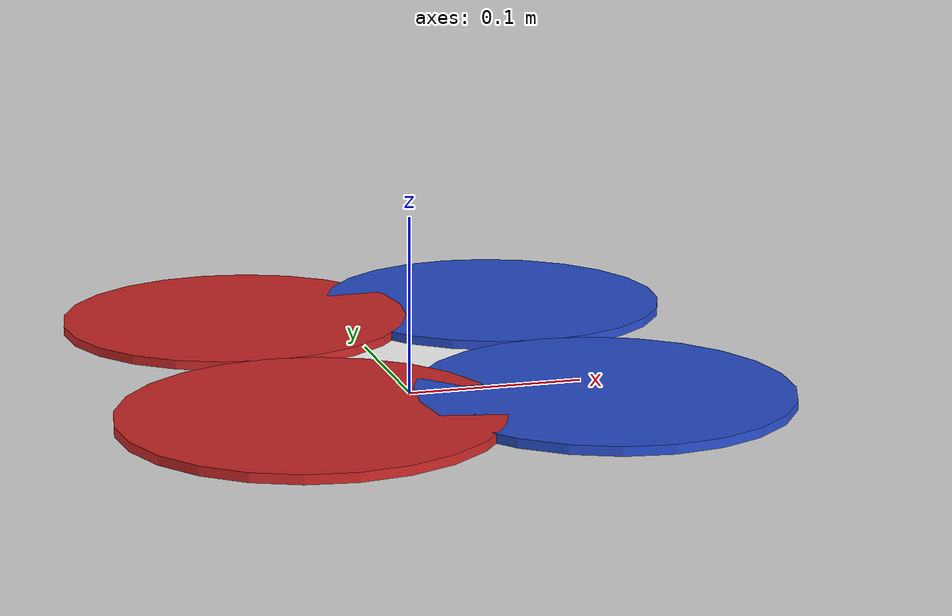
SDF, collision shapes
<?xml version="1.0" ?>
<sdf version="1.8">
  <model name="zmr250">
    <link name="base_link">
      <enable_wind>true</enable_wind>
        <pose>0 0 0 0 -0 0</pose>
        <inertial>
        <pose>0 0 0 0 -0 0</pose>
        <mass>0.848</mass>
        <inertia>
          <ixx>0.0032384</ixx>
          <ixy>0</ixy>
          <ixz>0</ixz>
          <iyy>0.0040254</iyy>
          <iyz>0</iyz>
          <izz>0.00459895</izz>
        </inertia>
        </inertial>
      <visual name="base_link_visual">
        <geometry>
          <mesh>
            <uri>model://zmr250/meshes/zmr250.dae</uri>
          </mesh>
        </geometry>
        <material>
          <diffuse>1.0 1.0 1.0 1.0</diffuse>
          <specular>0.0 0.0 0.0 1.0</specular>
          <pbr>
            <metal>
              <albedo_map>meshes/Hone.png</albedo_map>
            </metal>
          </pbr>
        </material>
      </visual>
      <collision name='base_link_inertia_collision'>
        <pose>0 0 0.01 0 -0 0</pose>
        <geometry>
            <box>
            <size>0.2 0.2 0.02</size>
            </box>
        </geometry>
        <!-- Add friction to the model -->
        <surface>
        <friction>
            <ode>
            <mu>1.0</mu>
            <mu2>1.0</mu2>
            <fdir1>1 1 0</fdir1>
            <slip1>0</slip1>
            <slip2>0</slip2>
            </ode>
        </friction>
        </surface>
      </collision>
    </link>

    <!-- IMU -->
    <model name='imu'>
        <link name="internal">
            <inertial>
                <mass>0.005</mass>
                <inertia>
                    <ixx>8.33e-06</ixx>
                    <ixy>0</ixy>
                    <ixz>0</ixz>
                    <iyy>8.33e-06</iyy>
                    <iyz>0</iyz>
                    <izz>8.33e-06</izz>
                </inertia>
            </inertial>
            <sensor name='imu' type='imu'>
                <always_on>1</always_on>
                <update_rate>250</update_rate>
                <imu>
                    <angular_velocity>
                        <x>
                            <noise type='gaussian'>
                                <mean>0</mean>
                                <stddev>0.009</stddev>
                                <bias_mean>0.00075</bias_mean>
                                <bias_stddev>0.005</bias_stddev>
                                <dynamic_bias_stddev>0.00002</dynamic_bias_stddev>
                                <dynamic_bias_correlation_time>400.0</dynamic_bias_correlation_time>
                                <precision>0.00025</precision>
                            </noise>
                        </x>
                        <y>
                            <noise type='gaussian'>
                                <mean>0</mean>
                                <stddev>0.009</stddev>
                                <bias_mean>0.00075</bias_mean>
                                <bias_stddev>0.005</bias_stddev>
                                <dynamic_bias_stddev>0.00002</dynamic_bias_stddev>
                                <dynamic_bias_correlation_time>400.0</dynamic_bias_correlation_time>
                                <precision>0.00025</precision>
                            </noise>
                        </y>
                        <z>
                            <noise type='gaussian'>
                                <mean>0</mean>
                                <stddev>0.009</stddev>
                                <bias_mean>0.00075</bias_mean>
                                <bias_stddev>0.005</bias_stddev>
                                <dynamic_bias_stddev>0.00002</dynamic_bias_stddev>
                                <dynamic_bias_correlation_time>400.0</dynamic_bias_correlation_time>
                                <precision>0.00025</precision>
                            </noise>
                        </z>
                    </angular_velocity>
                    <linear_acceleration>
                        <x>
                            <noise type='gaussian'>
                                <mean>0</mean>
                                <stddev>0.021</stddev>
                                <bias_mean>0.05</bias_mean>
                                <bias_stddev>0.0075</bias_stddev>
                                <dynamic_bias_stddev>0.000375</dynamic_bias_stddev>
                                <dynamic_bias_correlation_time>175.0</dynamic_bias_correlation_time>
                                <precision>0.005</precision>
                            </noise>
                        </x>
                        <y>
                            <noise type='gaussian'>
                                <mean>0</mean>
                                <stddev>0.021</stddev>
                                <bias_mean>0.05</bias_mean>
                                <bias_stddev>0.0075</bias_stddev>
                                <dynamic_bias_stddev>0.000375</dynamic_bias_stddev>
                                <dynamic_bias_correlation_time>175.0</dynamic_bias_correlation_time>
                                <precision>0.005</precision>
                            </noise>
                        </y>
                        <z>
                            <noise type='gaussian'>
                                <mean>0</mean>
                                <stddev>0.021</stddev>
                                <bias_mean>0.05</bias_mean>
                                <bias_stddev>0.0075</bias_stddev>
                                <dynamic_bias_stddev>0.000375</dynamic_bias_stddev>
                                <dynamic_bias_correlation_time>175.0</dynamic_bias_correlation_time>
                                <precision>0.005</precision>
                            </noise>
                        </z>
                    </linear_acceleration>
                </imu>
            </sensor>
        </link>
    </model>

    <joint name="imu_joint" type="fixed">
        <parent>base_link</parent>
        <child>imu</child>
    </joint>

    <link name='rotor_0'>
        <pose>0.07849349 -0.09867985 0.023 0 -0 0</pose>
        <inertial>
        <pose>0 0 0 0 -0 0</pose>
        <mass>0.005</mass>
        <inertia>
            <ixx>9.75e-07</ixx>
            <ixy>0</ixy>
            <ixz>0</ixz>
            <iyy>4.17041e-05</iyy>
            <iyz>0</iyz>
            <izz>4.26041e-05</izz>
        </inertia>
        </inertial>
        <collision name='rotor_0_collision'>
        <pose>0 0 0 0 -0 0</pose>
        <geometry>
            <cylinder>
            <length>0.005</length>
            <radius>0.1</radius>
            </cylinder>
        </geometry>
        <surface>
            <contact>
            <ode/>
            </contact>
            <friction>
            <ode/>
            </friction>
        </surface>
        </collision>
        <visual name='rotor_0_visual'>
        <pose>0 0 0 0 -0 0</pose>
        <geometry>
            <mesh>
            <scale>0.06 0.06 0.06</scale>
            <uri>model://zmr250/meshes/propeller_ccw.dae</uri>
            </mesh>
        </geometry>
        <material>
            <diffuse>0 0 1 1</diffuse>
            <script>
            <name>Gazebo/Blue</name>
            <uri>file://media/materials/scripts/gazebo.material</uri>
            </script>
        </material>
        <cast_shadows>0</cast_shadows>
        </visual>
        <gravity>1</gravity>
        <velocity_decay/>
    </link>
    <joint name='rotor_0_joint' type='revolute'>
        <child>rotor_0</child>
        <parent>base_link</parent>
        <axis>
        <xyz expressed_in='__model__'>0 0 1</xyz>
        <limit>
            <lower>-1e+16</lower>
            <upper>1e+16</upper>
        </limit>
        <dynamics>
            <spring_reference>0</spring_reference>
            <spring_stiffness>0</spring_stiffness>
        </dynamics>
        </axis>
    </joint>
    <link name='rotor_1'>
        <pose>-0.07849349 0.09867985 0.023 0 -0 0</pose>
        <inertial>
        <pose>0 0 0 0 -0 0</pose>
        <mass>0.005</mass>
        <inertia>
            <ixx>9.75e-07</ixx>
            <ixy>0</ixy>
            <ixz>0</ixz>
            <iyy>4.17041e-05</iyy>
            <iyz>0</iyz>
            <izz>4.26041e-05</izz>
        </inertia>
        </inertial>
        <collision name='rotor_1_collision'>
        <pose>0 0 0 0 -0 0</pose>
        <geometry>
            <cylinder>
            <length>0.005</length>
            <radius>0.1</radius>
            </cylinder>
        </geometry>
        <surface>
            <contact>
            <ode/>
            </contact>
            <friction>
            <ode/>
            </friction>
        </surface>
        </collision>
        <visual name='rotor_1_visual'>
        <pose>0 0 0 0 -0 0</pose>
        <geometry>
            <mesh>
             <scale>0.06 0.06 0.06</scale>
            <uri>model://zmr250/meshes/propeller_ccw.dae</uri>
            </mesh>
        </geometry>
        <material>
            <diffuse>1 0 0 1</diffuse>
            <script>
            <name>Gazebo/Red</name>
            <uri>file://media/materials/scripts/gazebo.material</uri>
            </script>
        </material>
        <cast_shadows>0</cast_shadows>
        </visual>
        <gravity>1</gravity>
        <velocity_decay/>
    </link>
    <joint name='rotor_1_joint' type='revolute'>
        <child>rotor_1</child>
        <parent>base_link</parent>
        <axis>
        <xyz expressed_in='__model__'>0 0 1</xyz>
        <limit>
            <lower>-1e+16</lower>
            <upper>1e+16</upper>
        </limit>
        <dynamics>
            <spring_reference>0</spring_reference>
            <spring_stiffness>0</spring_stiffness>
        </dynamics>
        </axis>
    </joint>
    <link name='rotor_2'>
        <pose>0.07849349 0.09867985 0.023 0 -0 0</pose>
        <inertial>
        <pose>0 0 0 0 -0 0</pose>
        <mass>0.005</mass>
        <inertia>
            <ixx>9.75e-07</ixx>
            <ixy>0</ixy>
            <ixz>0</ixz>
            <iyy>4.17041e-05</iyy>
            <iyz>0</iyz>
            <izz>4.26041e-05</izz>
        </inertia>
        </inertial>
        <collision name='rotor_2_collision'>
        <pose>0 0 0 0 -0 0</pose>
        <geometry>
            <cylinder>
            <length>0.005</length>
            <radius>0.1</radius>
            </cylinder>
        </geometry>
        <surface>
            <contact>
            <ode/>
            </contact>
            <friction>
            <ode/>
            </friction>
        </surface>
        </collision>
        <visual name='rotor_2_visual'>
        <pose>0 0 0 0 -0 0</pose>
        <geometry>
            <mesh>
             <scale>0.06 0.06 0.06</scale>
            <uri>model://zmr250/meshes/propeller_cw.dae</uri>
            </mesh>
        </geometry>
        <material>
            <diffuse>0 0 1 1</diffuse>
            <script>
            <name>Gazebo/Blue</name>
            <uri>file://media/materials/scripts/gazebo.material</uri>
            </script>
        </material>
        <cast_shadows>0</cast_shadows>
        </visual>
        <gravity>1</gravity>
        <velocity_decay/>
    </link>
    <joint name='rotor_2_joint' type='revolute'>
        <child>rotor_2</child>
        <parent>base_link</parent>
        <axis>
        <xyz expressed_in='__model__'>0 0 1</xyz>
        <limit>
            <lower>-1e+16</lower>
            <upper>1e+16</upper>
        </limit>
        <dynamics>
            <spring_reference>0</spring_reference>
            <spring_stiffness>0</spring_stiffness>
        </dynamics>
        </axis>
    </joint>
    <link name='rotor_3'>
        <pose>-0.07849349 -0.09867985 0.023 0 -0 0</pose>
        <inertial>
        <pose>0 0 0 0 -0 0</pose>
        <mass>0.005</mass>
        <inertia>
            <ixx>9.75e-07</ixx>
            <ixy>0</ixy>
            <ixz>0</ixz>
            <iyy>4.17041e-05</iyy>
            <iyz>0</iyz>
            <izz>4.26041e-05</izz>
        </inertia>
        </inertial>
        <collision name='rotor_3_collision'>
        <pose>0 0 0 0 -0 0</pose>
        <geometry>
            <cylinder>
            <length>0.005</length>
            <radius>0.1</radius>
            </cylinder>
        </geometry>
        <surface>
            <contact>
            <ode/>
            </contact>
            <friction>
            <ode/>
            </friction>
        </surface>
        </collision>
        <visual name='rotor_3_visual'>
        <pose>0 0 0 0 -0 0</pose>
        <geometry>
            <mesh>
             <scale>0.06 0.06 0.06</scale>
            <uri>model://zmr250/meshes/propeller_cw.dae</uri>
            </mesh>
        </geometry>
        <material>
            <diffuse>1 0 0 1</diffuse>
            <script>
            <name>Gazebo/Red</name>
            <uri>file://media/materials/scripts/gazebo.material</uri>
            </script>
        </material>
        <cast_shadows>0</cast_shadows>
        </visual>
        <gravity>1</gravity>
        <velocity_decay/>
    </link>
    <joint name='rotor_3_joint' type='revolute'>
        <child>rotor_3</child>
        <parent>base_link</parent>
        <axis>
        <xyz expressed_in='__model__'>0 0 1</xyz>
        <limit>
            <lower>-1e+16</lower>
            <upper>1e+16</upper>
        </limit>
        <dynamics>
            <spring_reference>0</spring_reference>
            <spring_stiffness>0</spring_stiffness>
        </dynamics>
        </axis>
    </joint>

  </model>
</sdf>
